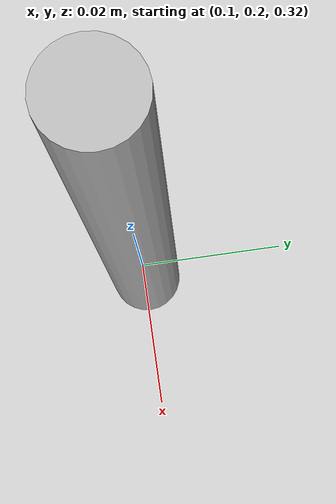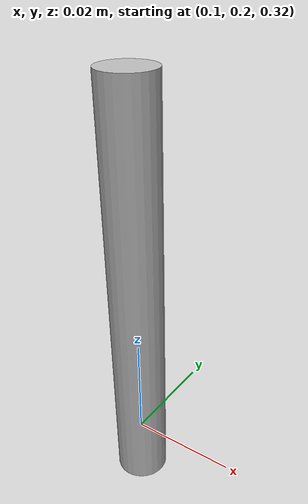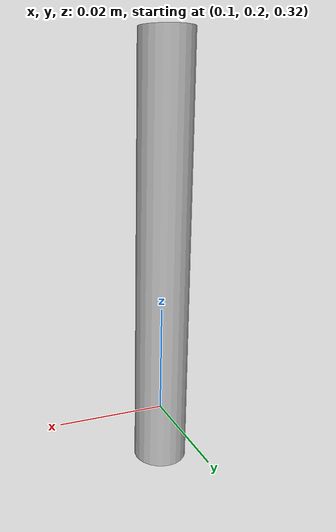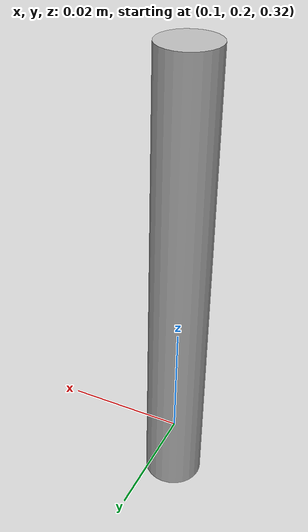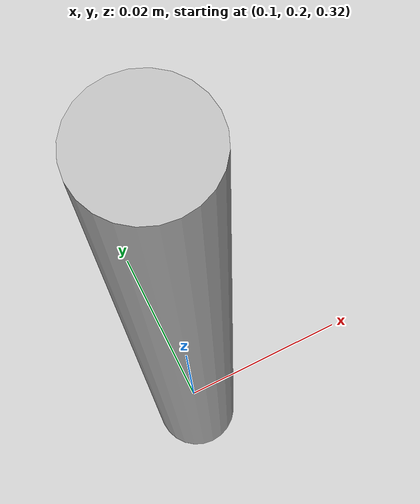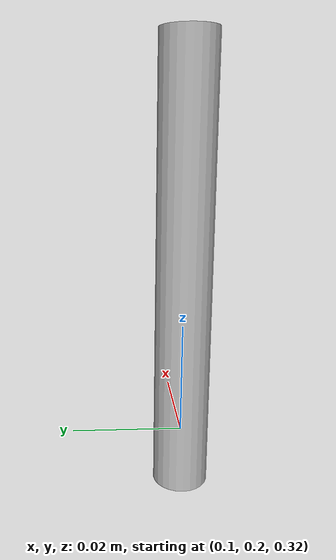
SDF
<?xml version="1.0" ?>
<sdf version="1.6">
  <model name="pickable_object">
    <static>false</static>

    <!-- Pose globale (equivalente a collision_objects[2].pose) -->
    <pose>0.1 0.2 0.35 0 0 0</pose>

    <link name="link">

      <!-- Inerzia minimale ma fisicamente valida -->
      <inertial>
        <mass>0.05</mass>
        <inertia>
          <ixx>1e-5</ixx>
          <iyy>1e-5</iyy>
          <izz>1e-5</izz>
        </inertia>
      </inertial>

      <!-- Collision -->
      <collision name="collision">
        <geometry>
          <cylinder>
            <radius>0.005</radius>
            <length>0.08</length>
          </cylinder>
        </geometry>
      </collision>

      <!-- Visual -->
      <visual name="visual">
        <geometry>
          <cylinder>
            <radius>0.005</radius>
            <length>0.08</length>
          </cylinder>
        </geometry>
      </visual>

    </link>
  </model>
</sdf>
